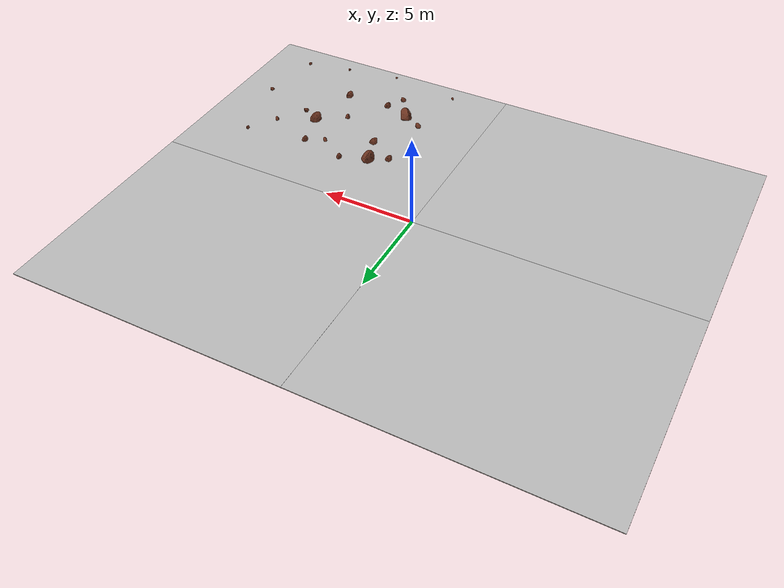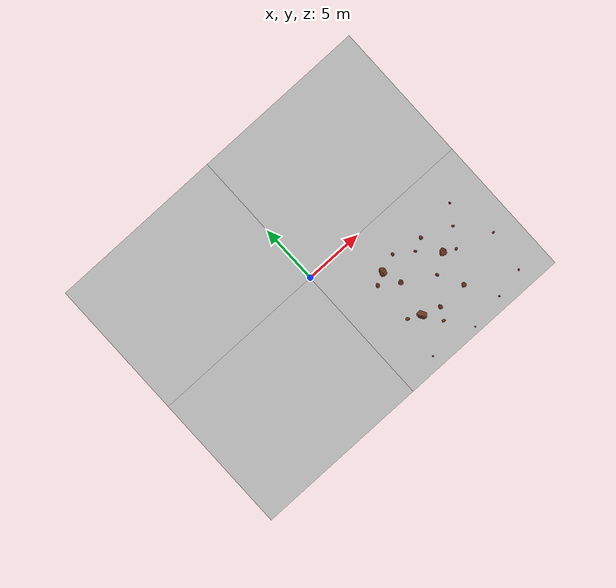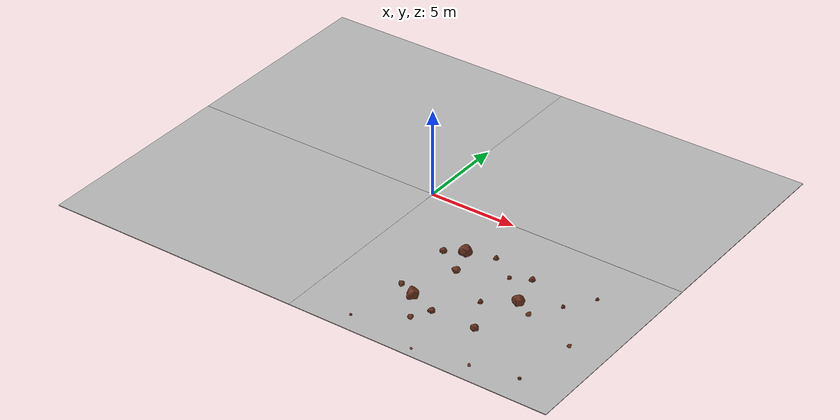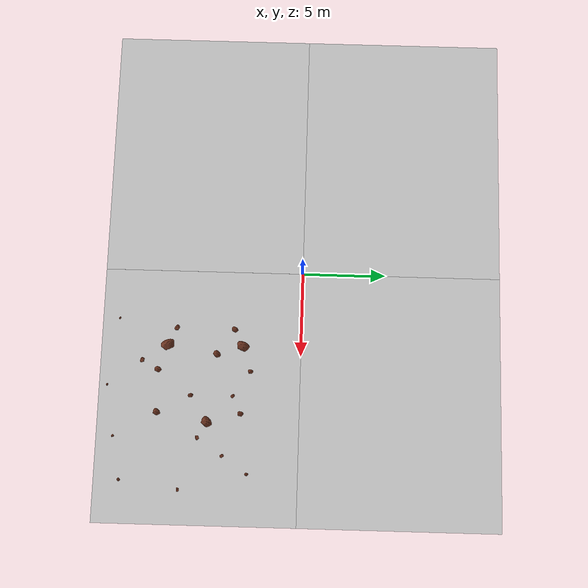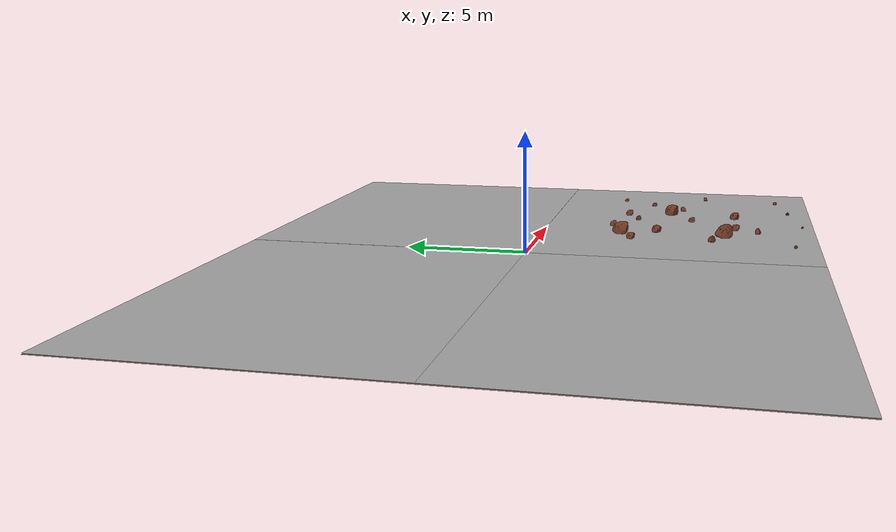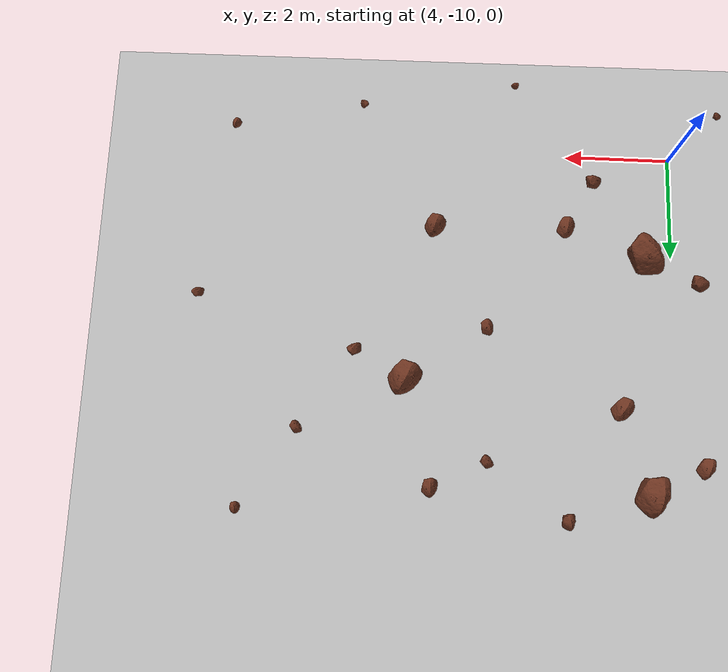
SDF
<?xml version="1.0"?>
<sdf version="1.6">
<world name="mars_terrain">

  <physics type="ode">
    <real_time_update_rate>1000</real_time_update_rate>
    <max_step_size>0.001</max_step_size>
    <real_time_factor>1</real_time_factor>
  </physics>

  <scene>
    <ambient>0.40 0.39 0.38 1</ambient>
    <background>0.55 0.38 0.28 1</background>
    <shadows>true</shadows>
    <grid>false</grid>
  </scene>

  <light type="directional" name="sun">
    <cast_shadows>true</cast_shadows>
    <pose>0 0 100 0 0.3 0.8</pose>
    <diffuse>1.0 0.90 0.80 1</diffuse>
    <specular>0.4 0.4 0.4 1</specular>
    <direction>-0.5 0.2 -0.9</direction>
  </light>

  <light type="directional" name="fill">
    <cast_shadows>false</cast_shadows>
    <pose>0 0 50 0 0 0</pose>
    <diffuse>0.3 0.28 0.25 1</diffuse>
    <specular>0.0 0.0 0.0 1</specular>
    <direction>0.5 -0.2 -0.8</direction>
  </light>

  <!-- Ground plane 30x24 m -->
  <model name="benchmark_base">
    <static>true</static>
    <link name="link">
      <collision name="collision">
        <geometry><plane><normal>0 0 1</normal><size>30 24</size></plane></geometry>
        <surface><friction><ode><mu>0.9</mu><mu2>0.9</mu2></ode></friction></surface>
      </collision>
      <visual name="visual">
        <geometry><plane><normal>0 0 1</normal><size>30 24</size></plane></geometry>
        <material><ambient>0.42 0.39 0.36 1</ambient><diffuse>0.42 0.39 0.36 1</diffuse></material>
      </visual>
    </link>
  </model>

  <!-- =================================================================
       TERRAIN ZONES — four quadrants, no gap, no overlap
  ================================================================= -->

  <!-- Q2 soil (x<0,y>0): 15x12 m centred at (-7.5, 6.0) — spawn (-7.5,6.0) -->
  <model name="soil_zone">
    <static>true</static>
    <pose>-7.5 6.0 0.003 0 0 0</pose>
    <link name="link">
      <collision name="collision">
        <geometry><box><size>15.0 12.0 0.006</size></box></geometry>
        <surface><friction><ode><mu>0.9</mu><mu2>0.9</mu2></ode></friction></surface>
      </collision>
      <visual name="visual">
        <geometry><box><size>15.0 12.0 0.006</size></box></geometry>
        <material><script>
          <uri>model://mars_terrain_tex/materials/scripts</uri>
          <uri>model://mars_terrain_tex/materials/textures</uri>
          <name>Mars/Soil</name>
        </script></material>
      </visual>
    </link>
  </model>

  <!-- Q1 bedrock (x>0,y>0): 15x12 m centred at (7.5, 6.0) — spawn (7.5,6.0) -->
  <model name="bedrock_zone">
    <static>true</static>
    <pose>7.5 6.0 0.005 0 0 0</pose>
    <link name="link">
      <collision name="collision">
        <geometry><box><size>15.0 12.0 0.010</size></box></geometry>
      </collision>
      <visual name="visual">
        <geometry><box><size>15.0 12.0 0.010</size></box></geometry>
        <material><script>
          <uri>model://mars_terrain_tex/materials/scripts</uri>
          <uri>model://mars_terrain_tex/materials/textures</uri>
          <name>Mars/Bedrock</name>
        </script></material>
      </visual>
    </link>
  </model>

  <!-- Q3 sand (x<0,y<0): 15x12 m centred at (-7.5,-6.0) — spawn (-7.5,-6.0) -->
  <model name="sand_zone">
    <static>true</static>
    <pose>-7.5 -6.0 0.003 0 0 0</pose>
    <link name="link">
      <collision name="collision">
        <geometry><box><size>15.0 12.0 0.006</size></box></geometry>
      </collision>
      <visual name="visual">
        <geometry><box><size>15.0 12.0 0.006</size></box></geometry>
        <material><script>
          <uri>model://mars_terrain_tex/materials/scripts</uri>
          <uri>model://mars_terrain_tex/materials/textures</uri>
          <name>Mars/Sand</name>
        </script></material>
      </visual>
    </link>
  </model>

  <!-- Q4 rock hazard (x>0,y<0): 15x12 m centred at (7.5,-6.0)
       spawns: (2.0,-4.0) rock_cluster, (2.0,-8.0) boulder_zone, rover faces +x -->
  <model name="rock_ground">
    <static>true</static>
    <pose>7.5 -6.0 0.002 0 0 0</pose>
    <link name="link">
      <collision name="collision">
        <geometry><box><size>15.0 12.0 0.004</size></box></geometry>
      </collision>
      <visual name="visual">
        <geometry><box><size>15.0 12.0 0.004</size></box></geometry>
        <material><script>
          <uri>model://mars_terrain_tex/materials/scripts</uri>
          <uri>model://mars_terrain_tex/materials/textures</uri>
          <name>Mars/Rock</name>
        </script></material>
      </visual>
    </link>
  </model>

  <!-- Large boulders (scale 0.38-0.45) -->
  <model name="boulder_1"><static>true</static><pose>4.5 -3.5 -0.099 0 0 0.7</pose>
    <link name="link">
      <collision name="c"><geometry><sphere><radius>0.273</radius></sphere></geometry></collision>
      <visual name="v"><geometry><mesh><uri>model://mars_rock/meshes/model.dae</uri><scale>0.42 0.42 0.42</scale></mesh></geometry>
        <material><script><uri>model://mars_terrain_tex/materials/scripts</uri><uri>model://mars_terrain_tex/materials/textures</uri><name>Mars/Rock</name></script></material>
      </visual></link></model>

  <model name="boulder_2"><static>true</static><pose>4.5 -8.0 -0.106 0.1 0 1.5</pose>
    <link name="link">
      <collision name="c"><geometry><sphere><radius>0.293</radius></sphere></geometry></collision>
      <visual name="v"><geometry><mesh><uri>model://mars_rock/meshes/model.dae</uri><scale>0.45 0.45 0.45</scale></mesh></geometry>
        <material><script><uri>model://mars_terrain_tex/materials/scripts</uri><uri>model://mars_terrain_tex/materials/textures</uri><name>Mars/Rock</name></script></material>
      </visual></link></model>

  <model name="boulder_3"><static>true</static><pose>9.0 -5.5 -0.089 0 0.1 0.3</pose>
    <link name="link">
      <collision name="c"><geometry><sphere><radius>0.247</radius></sphere></geometry></collision>
      <visual name="v"><geometry><mesh><uri>model://mars_rock/meshes/model.dae</uri><scale>0.38 0.38 0.38</scale></mesh></geometry>
        <material><script><uri>model://mars_terrain_tex/materials/scripts</uri><uri>model://mars_terrain_tex/materials/textures</uri><name>Mars/Rock</name></script></material>
      </visual></link></model>

  <!-- Medium rocks near spawn1 (2.0,-4.0) facing +x -->
  <model name="rock_1"><static>true</static><pose>3.5 -4.0 -0.052 0.1 0 0.5</pose>
    <link name="link">
      <collision name="c"><geometry><sphere><radius>0.143</radius></sphere></geometry></collision>
      <visual name="v"><geometry><mesh><uri>model://mars_rock/meshes/model.dae</uri><scale>0.22 0.22 0.22</scale></mesh></geometry>
        <material><script><uri>model://mars_terrain_tex/materials/scripts</uri><uri>model://mars_terrain_tex/materials/textures</uri><name>Mars/Rock</name></script></material>
      </visual></link></model>

  <model name="rock_2"><static>true</static><pose>6.0 -3.0 -0.042 0 0.2 1.0</pose>
    <link name="link">
      <collision name="c"><geometry><sphere><radius>0.117</radius></sphere></geometry></collision>
      <visual name="v"><geometry><mesh><uri>model://mars_rock/meshes/model.dae</uri><scale>0.18 0.18 0.18</scale></mesh></geometry>
        <material><script><uri>model://mars_terrain_tex/materials/scripts</uri><uri>model://mars_terrain_tex/materials/textures</uri><name>Mars/Rock</name></script></material>
      </visual></link></model>

  <model name="rock_3"><static>true</static><pose>5.0 -5.0 -0.059 0.2 0 0.2</pose>
    <link name="link">
      <collision name="c"><geometry><sphere><radius>0.163</radius></sphere></geometry></collision>
      <visual name="v"><geometry><mesh><uri>model://mars_rock/meshes/model.dae</uri><scale>0.25 0.25 0.25</scale></mesh></geometry>
        <material><script><uri>model://mars_terrain_tex/materials/scripts</uri><uri>model://mars_terrain_tex/materials/textures</uri><name>Mars/Rock</name></script></material>
      </visual></link></model>

  <model name="rock_4"><static>true</static><pose>7.5 -4.0 -0.035 0 0.1 1.8</pose>
    <link name="link">
      <collision name="c"><geometry><sphere><radius>0.098</radius></sphere></geometry></collision>
      <visual name="v"><geometry><mesh><uri>model://mars_rock/meshes/model.dae</uri><scale>0.15 0.15 0.15</scale></mesh></geometry>
        <material><script><uri>model://mars_terrain_tex/materials/scripts</uri><uri>model://mars_terrain_tex/materials/textures</uri><name>Mars/Rock</name></script></material>
      </visual></link></model>

  <model name="rock_5"><static>true</static><pose>8.5 -3.5 -0.047 0.1 0.1 0.8</pose>
    <link name="link">
      <collision name="c"><geometry><sphere><radius>0.130</radius></sphere></geometry></collision>
      <visual name="v"><geometry><mesh><uri>model://mars_rock/meshes/model.dae</uri><scale>0.20 0.20 0.20</scale></mesh></geometry>
        <material><script><uri>model://mars_terrain_tex/materials/scripts</uri><uri>model://mars_terrain_tex/materials/textures</uri><name>Mars/Rock</name></script></material>
      </visual></link></model>

  <!-- Medium rocks near spawn2 (2.0,-8.0) facing +x -->
  <model name="rock_6"><static>true</static><pose>3.5 -7.5 -0.047 0 0 2.1</pose>
    <link name="link">
      <collision name="c"><geometry><sphere><radius>0.130</radius></sphere></geometry></collision>
      <visual name="v"><geometry><mesh><uri>model://mars_rock/meshes/model.dae</uri><scale>0.20 0.20 0.20</scale></mesh></geometry>
        <material><script><uri>model://mars_terrain_tex/materials/scripts</uri><uri>model://mars_terrain_tex/materials/textures</uri><name>Mars/Rock</name></script></material>
      </visual></link></model>

  <model name="rock_7"><static>true</static><pose>6.0 -8.5 -0.052 0.2 0 0.6</pose>
    <link name="link">
      <collision name="c"><geometry><sphere><radius>0.143</radius></sphere></geometry></collision>
      <visual name="v"><geometry><mesh><uri>model://mars_rock/meshes/model.dae</uri><scale>0.22 0.22 0.22</scale></mesh></geometry>
        <material><script><uri>model://mars_terrain_tex/materials/scripts</uri><uri>model://mars_terrain_tex/materials/textures</uri><name>Mars/Rock</name></script></material>
      </visual></link></model>

  <model name="rock_8"><static>true</static><pose>5.5 -9.5 -0.042 0 0.1 2.5</pose>
    <link name="link">
      <collision name="c"><geometry><sphere><radius>0.117</radius></sphere></geometry></collision>
      <visual name="v"><geometry><mesh><uri>model://mars_rock/meshes/model.dae</uri><scale>0.18 0.18 0.18</scale></mesh></geometry>
        <material><script><uri>model://mars_terrain_tex/materials/scripts</uri><uri>model://mars_terrain_tex/materials/textures</uri><name>Mars/Rock</name></script></material>
      </visual></link></model>

  <model name="rock_9"><static>true</static><pose>7.5 -6.5 -0.040 0.1 0 1.2</pose>
    <link name="link">
      <collision name="c"><geometry><sphere><radius>0.111</radius></sphere></geometry></collision>
      <visual name="v"><geometry><mesh><uri>model://mars_rock/meshes/model.dae</uri><scale>0.17 0.17 0.17</scale></mesh></geometry>
        <material><script><uri>model://mars_terrain_tex/materials/scripts</uri><uri>model://mars_terrain_tex/materials/textures</uri><name>Mars/Rock</name></script></material>
      </visual></link></model>

  <model name="rock_10"><static>true</static><pose>8.5 -8.5 -0.059 0 0.2 0.4</pose>
    <link name="link">
      <collision name="c"><geometry><sphere><radius>0.163</radius></sphere></geometry></collision>
      <visual name="v"><geometry><mesh><uri>model://mars_rock/meshes/model.dae</uri><scale>0.25 0.25 0.25</scale></mesh></geometry>
        <material><script><uri>model://mars_terrain_tex/materials/scripts</uri><uri>model://mars_terrain_tex/materials/textures</uri><name>Mars/Rock</name></script></material>
      </visual></link></model>

  <!-- Far rocks visible from both spawns -->
  <model name="rock_11"><static>true</static><pose>10.0 -6.0 -0.038 0.1 0.1 3.1</pose>
    <link name="link">
      <collision name="c"><geometry><sphere><radius>0.104</radius></sphere></geometry></collision>
      <visual name="v"><geometry><mesh><uri>model://mars_rock/meshes/model.dae</uri><scale>0.16 0.16 0.16</scale></mesh></geometry>
        <material><script><uri>model://mars_terrain_tex/materials/scripts</uri><uri>model://mars_terrain_tex/materials/textures</uri><name>Mars/Rock</name></script></material>
      </visual></link></model>

  <model name="rock_12"><static>true</static><pose>11.0 -4.5 -0.033 0 0 1.7</pose>
    <link name="link">
      <collision name="c"><geometry><sphere><radius>0.091</radius></sphere></geometry></collision>
      <visual name="v"><geometry><mesh><uri>model://mars_rock/meshes/model.dae</uri><scale>0.14 0.14 0.14</scale></mesh></geometry>
        <material><script><uri>model://mars_terrain_tex/materials/scripts</uri><uri>model://mars_terrain_tex/materials/textures</uri><name>Mars/Rock</name></script></material>
      </visual></link></model>

  <!-- Background scattered across Q4 -->
  <model name="rock_13"><static>true</static><pose>12.0 -3.0 -0.028 0.2 0 0.9</pose>
    <link name="link">
      <collision name="c"><geometry><sphere><radius>0.078</radius></sphere></geometry></collision>
      <visual name="v"><geometry><mesh><uri>model://mars_rock/meshes/model.dae</uri><scale>0.12 0.12 0.12</scale></mesh></geometry>
        <material><script><uri>model://mars_terrain_tex/materials/scripts</uri><uri>model://mars_terrain_tex/materials/textures</uri><name>Mars/Rock</name></script></material>
      </visual></link></model>

  <model name="rock_14"><static>true</static><pose>13.0 -7.0 -0.031 0.1 0 2.8</pose>
    <link name="link">
      <collision name="c"><geometry><sphere><radius>0.085</radius></sphere></geometry></collision>
      <visual name="v"><geometry><mesh><uri>model://mars_rock/meshes/model.dae</uri><scale>0.13 0.13 0.13</scale></mesh></geometry>
        <material><script><uri>model://mars_terrain_tex/materials/scripts</uri><uri>model://mars_terrain_tex/materials/textures</uri><name>Mars/Rock</name></script></material>
      </visual></link></model>

  <model name="rock_15"><static>true</static><pose>12.5 -10.5 -0.026 0 0.1 0.3</pose>
    <link name="link">
      <collision name="c"><geometry><sphere><radius>0.072</radius></sphere></geometry></collision>
      <visual name="v"><geometry><mesh><uri>model://mars_rock/meshes/model.dae</uri><scale>0.11 0.11 0.11</scale></mesh></geometry>
        <material><script><uri>model://mars_terrain_tex/materials/scripts</uri><uri>model://mars_terrain_tex/materials/textures</uri><name>Mars/Rock</name></script></material>
      </visual></link></model>

  <model name="rock_16"><static>true</static><pose>10.0 -11.0 -0.024 0.1 0 4.7</pose>
    <link name="link">
      <collision name="c"><geometry><sphere><radius>0.065</radius></sphere></geometry></collision>
      <visual name="v"><geometry><mesh><uri>model://mars_rock/meshes/model.dae</uri><scale>0.10 0.10 0.10</scale></mesh></geometry>
        <material><script><uri>model://mars_terrain_tex/materials/scripts</uri><uri>model://mars_terrain_tex/materials/textures</uri><name>Mars/Rock</name></script></material>
      </visual></link></model>

  <model name="rock_17"><static>true</static><pose>3.0 -11.0 -0.021 0 0.2 2.0</pose>
    <link name="link">
      <collision name="c"><geometry><sphere><radius>0.059</radius></sphere></geometry></collision>
      <visual name="v"><geometry><mesh><uri>model://mars_rock/meshes/model.dae</uri><scale>0.09 0.09 0.09</scale></mesh></geometry>
        <material><script><uri>model://mars_terrain_tex/materials/scripts</uri><uri>model://mars_terrain_tex/materials/textures</uri><name>Mars/Rock</name></script></material>
      </visual></link></model>

  <model name="rock_18"><static>true</static><pose>7.0 -11.5 -0.019 0.2 0 5.5</pose>
    <link name="link">
      <collision name="c"><geometry><sphere><radius>0.052</radius></sphere></geometry></collision>
      <visual name="v"><geometry><mesh><uri>model://mars_rock/meshes/model.dae</uri><scale>0.08 0.08 0.08</scale></mesh></geometry>
        <material><script><uri>model://mars_terrain_tex/materials/scripts</uri><uri>model://mars_terrain_tex/materials/textures</uri><name>Mars/Rock</name></script></material>
      </visual></link></model>

  <!-- soil zone has no rocks — pure single-class zone for controlled testing -->

  <model name="thirdperson_cam_soil_zone"><static>true</static>
    <pose>-4.5 6.0 2.6 0 0.45 3.1416</pose>
    <link name="link">
      <sensor type="camera" name="cam">
        <update_rate>15</update_rate>
        <camera name="c"><horizontal_fov>0.95</horizontal_fov>
          <image><width>640</width><height>480</height><format>R8G8B8</format></image>
          <clip><near>0.05</near><far>300</far></clip>
        </camera>
        <plugin name="cam_plugin" filename="libgazebo_ros_camera.so">
          <ros><namespace>/gazebo_cam/soil_zone</namespace></ros>
          <camera_name>cam</camera_name>
          <frame_name>soil_zone_cam_frame</frame_name>
        </plugin>
      </sensor>
    </link>
  </model>

  <model name="thirdperson_cam_bedrock_zone"><static>true</static>
    <!-- 2026-08-17 v2: closer (3m) + narrower FOV to minimise neighbour-zone
         bleed. Rover keeps facing +x here - already out of the map centre. -->
    <pose>4.5 6.0 2.6 0 0.45 0</pose>
    <link name="link">
      <sensor type="camera" name="cam">
        <update_rate>15</update_rate>
        <camera name="c"><horizontal_fov>0.95</horizontal_fov>
          <image><width>640</width><height>480</height><format>R8G8B8</format></image>
          <clip><near>0.05</near><far>300</far></clip>
        </camera>
        <plugin name="cam_plugin" filename="libgazebo_ros_camera.so">
          <ros><namespace>/gazebo_cam/bedrock_zone</namespace></ros>
          <camera_name>cam</camera_name>
          <frame_name>bedrock_zone_cam_frame</frame_name>
        </plugin>
      </sensor>
    </link>
  </model>

  <model name="thirdperson_cam_sand_zone"><static>true</static>
    <pose>-4.5 -6.0 2.6 0 0.45 3.1416</pose>
    <link name="link">
      <sensor type="camera" name="cam">
        <update_rate>15</update_rate>
        <camera name="c"><horizontal_fov>0.95</horizontal_fov>
          <image><width>640</width><height>480</height><format>R8G8B8</format></image>
          <clip><near>0.05</near><far>300</far></clip>
        </camera>
        <plugin name="cam_plugin" filename="libgazebo_ros_camera.so">
          <ros><namespace>/gazebo_cam/sand_zone</namespace></ros>
          <camera_name>cam</camera_name>
          <frame_name>sand_zone_cam_frame</frame_name>
        </plugin>
      </sensor>
    </link>
  </model>

  <model name="thirdperson_cam_rock_cluster"><static>true</static>
    <pose>2.0 -7.5 2.6 0 0.45 1.5708</pose>
    <link name="link">
      <sensor type="camera" name="cam">
        <update_rate>15</update_rate>
        <camera name="c"><horizontal_fov>0.95</horizontal_fov>
          <image><width>640</width><height>480</height><format>R8G8B8</format></image>
          <clip><near>0.05</near><far>300</far></clip>
        </camera>
        <plugin name="cam_plugin" filename="libgazebo_ros_camera.so">
          <ros><namespace>/gazebo_cam/rock_cluster</namespace></ros>
          <camera_name>cam</camera_name>
          <frame_name>rock_cluster_cam_frame</frame_name>
        </plugin>
      </sensor>
    </link>
  </model>

  <model name="thirdperson_cam_boulder_zone"><static>true</static>
    <pose>8.0 -8.0 2.6 0 0.45 3.1416</pose>
    <link name="link">
      <sensor type="camera" name="cam">
        <update_rate>15</update_rate>
        <camera name="c"><horizontal_fov>0.95</horizontal_fov>
          <image><width>640</width><height>480</height><format>R8G8B8</format></image>
          <clip><near>0.05</near><far>300</far></clip>
        </camera>
        <plugin name="cam_plugin" filename="libgazebo_ros_camera.so">
          <ros><namespace>/gazebo_cam/boulder_zone</namespace></ros>
          <camera_name>cam</camera_name>
          <frame_name>boulder_zone_cam_frame</frame_name>
        </plugin>
      </sensor>
    </link>
  </model>

</world>
</sdf>
